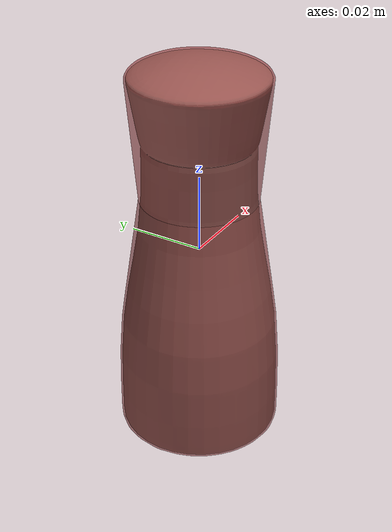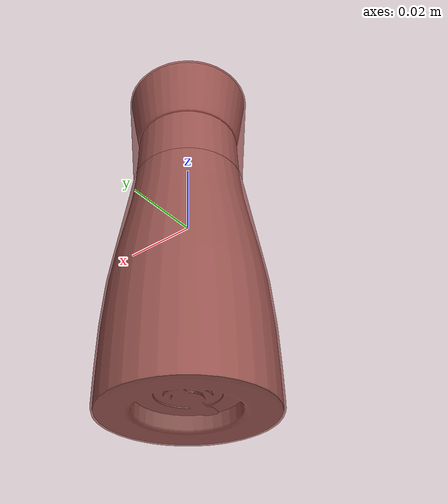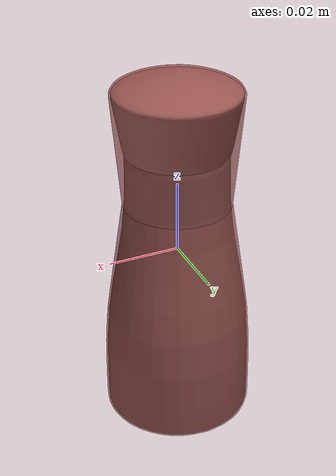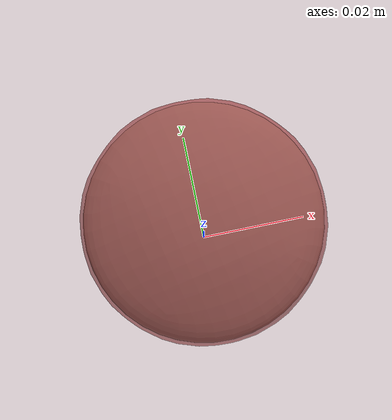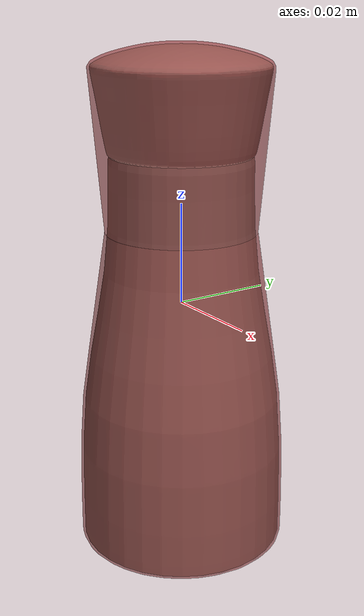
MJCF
<mujoco model="model">
  <option timestep="0.002" gravity="0.0 0.0 -9.81"/>
  <compiler angle="radian"/>
  <asset>
    <mesh file="visual/PepperShaker005.obj" name="PepperShaker005_vis"/>
    <texture file="visual/T_BC001.png" name="PepperShaker005_material" type="2d"/>
    <material name="PepperShaker005_material" rgba="1 1 1 1.0" texture="PepperShaker005_material" shininess="0.5" specular="0.3103448502657381"/>
    <mesh file="collision/collision_mesh_collision_0.obj" name="PepperShaker005_collision_mesh_0"/>
    <mesh file="collision/collision_mesh_collision_1.obj" name="PepperShaker005_collision_mesh_1"/>
  </asset>
  <default>
    <default class="visual">
      <geom conaffinity="0" contype="0" group="1" type="mesh"/>
    </default>
    <default class="collision">
      <geom group="0" rgba="0.5 0 0 0.5" density="1000.0"/>
    </default>
    <default class="spawn">
      <geom group="0" rgba="1 1 1 0.5" contype="0" conaffinity="0"/>
      <site group="0" rgba="1 1 1 0.5"/>
    </default>
    <default class="region">
      <geom group="1" conaffinity="0" contype="0" rgba="0 1 0 0" mass="0"/>
    </default>
  </default>
  <worldbody>
    <body>
      <body name="object">
        <geom mesh="PepperShaker005_vis" type="mesh" solimp="0.998 0.998 0.001" solref="0.001 1" friction="0.95 0.3 0.1" class="visual" material="PepperShaker005_material"/>
        <geom class="region" name="reg_bbox" type="box" pos="0.0 0.0 -1.0900000000001187e-05" size="0.02111701 0.02111701 0.05037936"/>
        <geom mesh="PepperShaker005_collision_mesh_0" type="mesh" class="collision"/>
        <geom mesh="PepperShaker005_collision_mesh_1" type="mesh" class="collision"/>
      </body>
    </body>
  </worldbody>
  <actuator/>
</mujoco>
